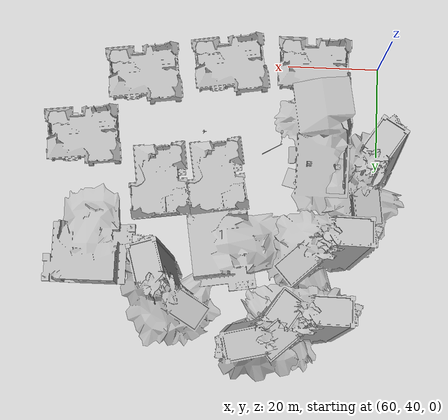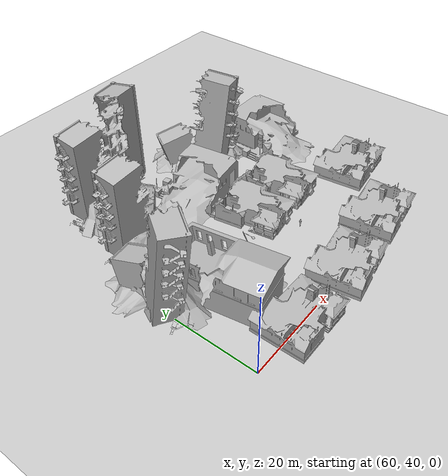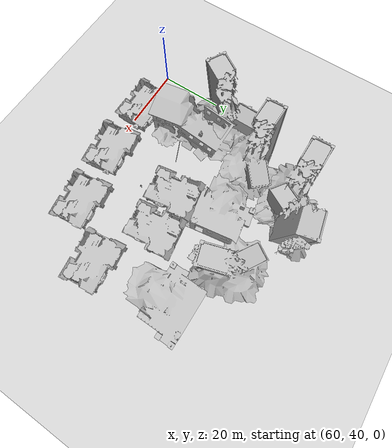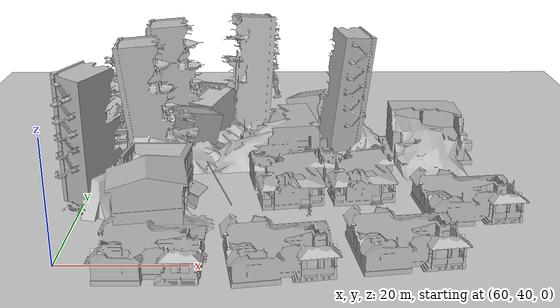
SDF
<sdf version="1.6">
 <world name="default">
  <light name="sun" type="directional">
   <cast_shadows>0</cast_shadows>
   <pose>0 0 10 0 -0 0</pose>
   <diffuse>0.8 0.8 0.8 1</diffuse>
   <specular>0.2 0.2 0.2 1</specular>
   <attenuation>
    <range>1000</range>
    <constant>0.9</constant>
    <linear>0.01</linear>
    <quadratic>0.001</quadratic>
   </attenuation>
   <direction>-0.5 0.1 -0.9</direction>
  </light>
  <model name="ground_plane">
   <static>1</static>
   <link name="link">
    <collision name="collision">
     <geometry><plane><normal>0 0 1</normal><size>100 100</size></plane></geometry>
     <surface><friction><ode><mu>100</mu><mu2>50</mu2></ode></friction></surface>
    </collision>
    <visual name="visual">
     <pose>90 70 0 0 -0 0</pose>
     <cast_shadows>0</cast_shadows>
     <geometry><plane><normal>0 0 1</normal><size>100 100</size></plane></geometry>
     <material>
      <script><uri>file://media/materials/scripts/gazebo.material</uri><name>Gazebo/Tertiary</name></script>
     </material>
    </visual>
    <velocity_decay><linear>0</linear><angular>0</angular></velocity_decay>
   </link>
  </model>
  <model name="collapsed_industrial">
   <static>1</static>
   <link name="link">
    <collision name="collision">
     <geometry><mesh><uri>model://collapsed_industrial/meshes/collapsed_industrial.dae</uri></mesh></geometry>
    </collision>
    <visual name="visual">
     <geometry><mesh><uri>model://collapsed_industrial/meshes/collapsed_industrial.dae</uri></mesh></geometry>
    </visual>
   </link>
   <pose>71.9529 80.9082 0 0 -0 0</pose>
  </model>
  <model name="collapsed_industrial_1">
   <static>1</static>
   <link name="link">
    <collision name="collision">
     <geometry><mesh><uri>model://collapsed_industrial/meshes/collapsed_industrial.dae</uri></mesh></geometry>
    </collision>
    <visual name="visual">
     <geometry><mesh><uri>model://collapsed_industrial/meshes/collapsed_industrial.dae</uri></mesh></geometry>
    </visual>
   </link>
   <pose>105.37 91.4246 0 0 -0 1.86314</pose>
  </model>
  <model name="collapsed_house">
   <static>1</static>
   <link name="link">
    <collision name="collision">
     <geometry>
      <mesh><scale>1.5 1.5 1.5</scale><uri>model://collapsed_house/meshes/collapsed_house.dae</uri></mesh>
     </geometry>
    </collision>
    <visual name="visual">
     <geometry>
      <mesh><scale>1.5 1.5 1.5</scale><uri>model://collapsed_house/meshes/collapsed_house.dae</uri></mesh>
     </geometry>
    </visual>
   </link>
   <pose>95.068 66.2336 0 0 0 -1.40134</pose>
  </model>
  <model name="collapsed_police_station">
   <static>1</static>
   <link name="link">
    <collision name="collision">
     <geometry>
      <mesh><uri>model://collapsed_police_station/meshes/collapsed_police_station.dae</uri></mesh>
     </geometry>
    </collision>
    <visual name="visual">
     <geometry>
      <mesh><uri>model://collapsed_police_station/meshes/collapsed_police_station.dae</uri></mesh>
     </geometry>
    </visual>
   </link>
   <pose>88.9507 80.5229 0 0 0 -1.41387</pose>
  </model>
  <model name="collapsed_industrial_2">
   <static>1</static>
   <link name="link">
    <collision name="collision">
     <geometry><mesh><uri>model://collapsed_industrial/meshes/collapsed_industrial.dae</uri></mesh></geometry>
    </collision>
    <visual name="visual">
     <geometry><mesh><uri>model://collapsed_industrial/meshes/collapsed_industrial.dae</uri></mesh></geometry>
    </visual>
   </link>
   <pose>75.635 96.5014 0 0 -0 0</pose>
  </model>
  <model name="Lamp Post">
   <static>1</static>
   <link name="link">
    <collision name="collision">
     <geometry><mesh><uri>model://lamp_post/meshes/lamp_post.dae</uri><scale>3 3 3</scale></mesh></geometry>
    </collision>
    <visual name="visual">
     <geometry><mesh><uri>model://lamp_post/meshes/lamp_post.dae</uri><scale>3 3 3</scale></mesh></geometry>
    </visual>
   </link>
   <pose>85.1289 60.1339 -0.122662 0.075232 -0.438267 -0.034017</pose>
  </model>
  <model name="collapsed_industrial_3">
   <static>1</static>
   <link name="link">
    <collision name="collision">
     <geometry><mesh><uri>model://collapsed_industrial/meshes/collapsed_industrial.dae</uri></mesh></geometry>
    </collision>
    <visual name="visual">
     <geometry><mesh><uri>model://collapsed_industrial/meshes/collapsed_industrial.dae</uri></mesh></geometry>
    </visual>
   </link>
   <pose>63.2368 65.6702 0 0 -0 0.991688</pose>
  </model>
  <model name="collapsed_police_station_1">
   <static>1</static>
   <link name="link">
    <collision name="collision">
     <geometry>
      <mesh><uri>model://collapsed_police_station/meshes/collapsed_police_station.dae</uri></mesh>
     </geometry>
    </collision>
    <visual name="visual">
     <geometry>
      <mesh><uri>model://collapsed_police_station/meshes/collapsed_police_station.dae</uri></mesh>
     </geometry>
    </visual>
   </link>
   <pose>121.873 79.2558 0 0 -0 0</pose>
  </model>
  <model name="collapsed_house_1">
   <static>1</static>
   <link name="link">
    <collision name="collision">
     <geometry>
      <mesh><scale>1.5 1.5 1.5</scale><uri>model://collapsed_house/meshes/collapsed_house.dae</uri></mesh>
     </geometry>
    </collision>
    <visual name="visual">
     <geometry>
      <mesh><scale>1.5 1.5 1.5</scale><uri>model://collapsed_house/meshes/collapsed_house.dae</uri></mesh>
     </geometry>
    </visual>
   </link>
   <pose>107.459 67.5783 0 0 0 -1.43266</pose>
  </model>
  <model name="collapsed_house_2">
   <static>1</static>
   <link name="link">
    <collision name="collision">
     <geometry>
      <mesh><scale>1.5 1.5 1.5</scale><uri>model://collapsed_house/meshes/collapsed_house.dae</uri></mesh>
     </geometry>
    </collision>
    <visual name="visual">
     <geometry>
      <mesh><scale>1.5 1.5 1.5</scale><uri>model://collapsed_house/meshes/collapsed_house.dae</uri></mesh>
     </geometry>
    </visual>
   </link>
   <pose>92.946 40.9378 0 0 -0 0.155359</pose>
  </model>
  <model name="collapsed_fire_station">
   <static>1</static>
   <link name="link">
    <collision name="collision">
     <geometry><mesh><uri>model://collapsed_fire_station/meshes/collapsed_fire_station.dae</uri></mesh></geometry>
    </collision>
    <visual name="visual">
     <geometry><mesh><uri>model://collapsed_fire_station/meshes/collapsed_fire_station.dae</uri></mesh></geometry>
    </visual>
   </link>
   <pose>72.5737 59.6413 0 0 -0 1.74074</pose>
  </model>
  <model name="collapsed_industrial_0">
   <static>1</static>
   <link name="link">
    <collision name="collision">
     <geometry><mesh><uri>model://collapsed_industrial/meshes/collapsed_industrial.dae</uri></mesh></geometry>
    </collision>
    <visual name="visual">
     <geometry><mesh><uri>model://collapsed_industrial/meshes/collapsed_industrial.dae</uri></mesh></geometry>
    </visual>
   </link>
   <pose>83.7067 100.313 0 0 0 -2.90069</pose>
  </model>
  <model name="collapsed_house_0">
   <static>1</static>
   <link name="link">
    <collision name="collision">
     <geometry>
      <mesh><scale>1.5 1.5 1.5</scale><uri>model://collapsed_house/meshes/collapsed_house.dae</uri></mesh>
     </geometry>
    </collision>
    <visual name="visual">
     <geometry>
      <mesh><scale>1.5 1.5 1.5</scale><uri>model://collapsed_house/meshes/collapsed_house.dae</uri></mesh>
     </geometry>
    </visual>
   </link>
   <pose>74.3306 40.6651 0 0 -0 0</pose>
  </model>
  <model name="person_walking">
   <link name="link">
    <inertial>
     <pose>0 0 0.95 0 -0 0</pose>
     <mass>80</mass>
     <inertia><ixx>27.82</ixx><ixy>0</ixy><ixz>0</ixz><iyy>24.88</iyy><iyz>0</iyz><izz>4.57</izz></inertia>
    </inertial>
    <collision name="bottom">
     <pose>0 0 0.01 0 -0 0</pose>
     <geometry><box><size>0.35 0.75 0.02</size></box></geometry>
    </collision>
    <collision name="person">
     <pose>0 0 -0.02 0 -0 0</pose>
     <geometry><mesh><uri>model://person_walking/meshes/walking.dae</uri></mesh></geometry>
    </collision>
    <visual name="visual">
     <pose>0 0 -0.02 0 -0 0</pose>
     <geometry><mesh><uri>model://person_walking/meshes/walking.dae</uri></mesh></geometry>
    </visual>
   </link>
   <pose>98.0812 55.8141 0 1e-06 0 1.88135</pose>
  </model>
  <physics name="default_physics" default="0" type="ode">
   <max_step_size>0.001</max_step_size>
   <real_time_factor>1</real_time_factor>
   <real_time_update_rate>1000</real_time_update_rate>
  </physics>
  <scene>
   <sky><clouds><speed>12</speed></clouds></sky>
   <ambient>0.4 0.4 0.4 1</ambient>
   <background>0.7 0.7 0.7 1</background>
   <shadows>1</shadows>
  </scene>
  <gravity>0 0 -9.8</gravity>
  <magnetic_field>6e-06 2.3e-05 -4.2e-05</magnetic_field>
  <atmosphere type="adiabatic"/>
  <spherical_coordinates>
   <surface_model>EARTH_WGS84</surface_model>
   <latitude_deg>0</latitude_deg>
   <longitude_deg>0</longitude_deg>
   <elevation>0</elevation>
   <heading_deg>0</heading_deg>
  </spherical_coordinates>
  <model name="collapsed_house_3">
   <static>1</static>
   <link name="link">
    <collision name="collision">
     <geometry>
      <mesh><scale>1.5 1.5 1.5</scale><uri>model://collapsed_house/meshes/collapsed_house.dae</uri></mesh>
     </geometry>
    </collision>
    <visual name="visual">
     <geometry>
      <mesh><scale>1.5 1.5 1.5</scale><uri>model://collapsed_house/meshes/collapsed_house.dae</uri></mesh>
     </geometry>
    </visual>
   </link>
   <pose>124.461 58.3182 0 0 -0 0.122171</pose>
  </model>
  <model name="collapsed_house_4">
   <static>1</static>
   <link name="link">
    <collision name="collision">
     <geometry>
      <mesh><scale>1.5 1.5 1.5</scale><uri>model://collapsed_house/meshes/collapsed_house.dae</uri></mesh>
     </geometry>
    </collision>
    <visual name="visual">
     <geometry>
      <mesh><scale>1.5 1.5 1.5</scale><uri>model://collapsed_house/meshes/collapsed_house.dae</uri></mesh>
     </geometry>
    </visual>
   </link>
   <pose>111.847 43.7883 0 0 -0 0.136954</pose>
  </model>
 </world>
</sdf>
